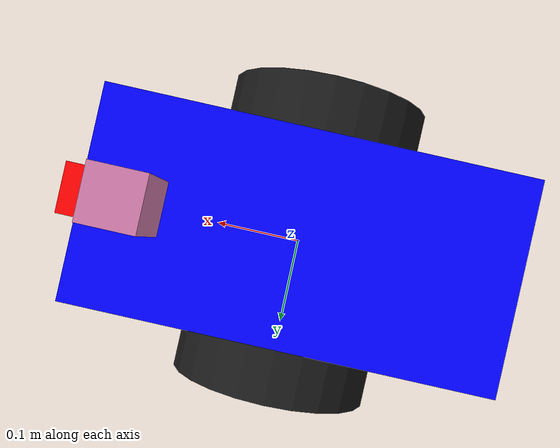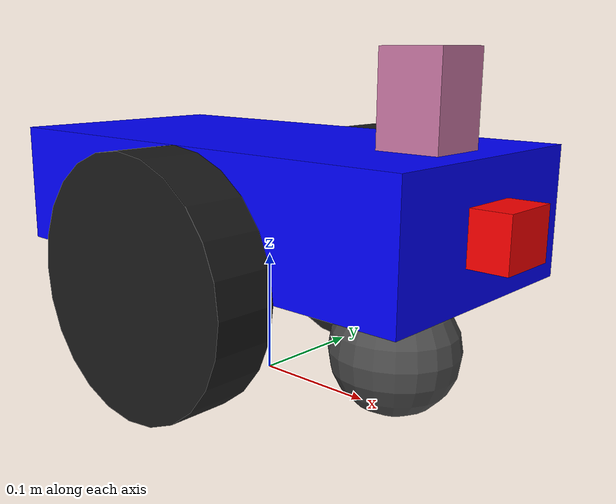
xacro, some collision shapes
<?xml version="1.0"?>
<robot name="robot" xmlns:xacro="http://www.ros.org/wiki/xacro">

  <!-- Shared dimensional properties (must come first) -->
  <xacro:include filename="$(find robot_description)/urdf/common/robot_properties.xacro"/>

  <!-- Robot base, chassis, and caster wheels -->
  <xacro:include filename="$(find robot_description)/urdf/base/base.xacro"/>

  <!-- Robot Controls -->
  <xacro:include filename="$(find robot_description)/urdf/base/base.ros2_control.xacro"/>

  <!-- Driven wheel macro -->
  <xacro:include filename="$(find robot_description)/urdf/wheels/wheel.xacro"/>

  <!-- Instantiate the two driven wheels (left = +Y, right = -Y) -->
  <xacro:wheel prefix="left" side="1"/>
  <xacro:wheel prefix="right" side="-1"/>

  <!-- Sensors -->
  <xacro:include filename="$(find robot_description)/urdf/sensors/lidar.xacro"/>
  <xacro:include filename="$(find robot_description)/urdf/sensors/camera.xacro"/>

  <!-- gz_ros2_control plugin for Gazebo simulation with ros2_control -->
  <gazebo>
    <plugin filename="gz_ros2_control-system" name="gz_ros2_control::GazeboSimROS2ControlPlugin">
      <parameters>$(find robot_description)/config/controllers.yaml</parameters>
    </plugin>
  </gazebo>

  <!-- Gazebo sensor rendering pipeline -->
  <gazebo>
    <plugin filename="gz-sim-sensors-system" name="gz::sim::systems::Sensors">
      <render_engine>ogre2</render_engine>
    </plugin>
  </gazebo>

</robot>

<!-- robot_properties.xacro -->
<robot xmlns:xacro="http://www.ros.org/wiki/xacro" name="robot_properties">

  <!-- Chassis dimensions (box: length x width x height) -->
  <xacro:property name="chassis_length" value="0.4"/>
  <xacro:property name="chassis_width" value="0.2"/>
  <xacro:property name="chassis_height" value="0.1"/>
  <xacro:property name="chassis_mass" value="15.0"/>

  <!-- Driven wheel dimensions (cylinder: radius and length, length = thickness) -->
  <xacro:property name="wheel_radius" value="0.1"/>
  <xacro:property name="wheel_length" value="0.05"/>
  <xacro:property name="wheel_mass" value="2.0"/>

  <!-- Caster wheel dimensions (sphere) -->
  <xacro:property name="caster_radius" value="0.05"/>
  <xacro:property name="caster_mass" value="0.5"/>
  <xacro:property name="caster_inset" value="0.02"/>

  <!-- Camera dimensions (box: x=depth, y=width, z=height) -->
  <xacro:property name="camera_size_x" value="0.03"/>
  <xacro:property name="camera_size_y" value="0.05"/>
  <xacro:property name="camera_size_z" value="0.04"/>
  <xacro:property name="camera_mass" value="0.1"/>

  <!-- Derived heights -->
  <!-- chassis frame sits at wheel-axle level, so wheels mount at chassis bottom -->
  <xacro:property name="chassis_z" value="${wheel_radius + chassis_height/2}"/>

  <!-- RViz Colors -->
  <material name="blue">
    <color rgba="0.0 0.0 1.0 1.0"/>
  </material>
  <material name="red">
    <color rgba="1.0 0.0 0.0 1.0"/>
  </material>
  <material name="black">
    <color rgba="0.1 0.1 0.1 1.0"/>
  </material>
  <material name="grey">
    <color rgba="0.3 0.3 0.3 1.0"/>
  </material>

</robot>

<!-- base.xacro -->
<robot xmlns:xacro="http://www.ros.org/wiki/xacro" name="base">

  <xacro:include filename="$(find robot_description)/urdf/wheels/caster.xacro"/>

  <!-- Robot footprint: navigation reference frame at ground level -->
  <link name="robot_footprint"/>

  <!-- Lift chassis frame to wheel-axle height + half chassis -->
  <joint name="robot_footprint_to_chassis_joint" type="fixed">
    <origin xyz="0 0 ${chassis_z}" rpy="0 0 0"/>
    <parent link="robot_footprint"/>
    <child link="chassis"/>
  </joint>

  <!-- Chassis link: frame at the geometric center of the box -->
  <link name="chassis">
    <inertial>
      <mass value="${chassis_mass}"/>
      <origin xyz="0 0 0" rpy="0 0 0"/>
      <inertia
          ixx="${chassis_mass * (chassis_width**2 + chassis_height**2) / 12}"
          ixy="0"
          ixz="0"
          iyy="${chassis_mass * (chassis_length**2 + chassis_height**2) / 12}"
          iyz="0"
          izz="${chassis_mass * (chassis_length**2 + chassis_width**2) / 12}"/>
    </inertial>

    <visual>
      <origin xyz="0 0 0" rpy="0 0 0"/>
      <geometry>
        <box size="${chassis_length} ${chassis_width} ${chassis_height}"/>
      </geometry>
      <material name="blue" />
    </visual>

    <collision>
      <origin xyz="0 0 0" rpy="0 0 0"/>
      <geometry>
        <box size="${chassis_length} ${chassis_width} ${chassis_height}"/>
      </geometry>
    </collision>
  </link>

  <!-- Front and back casters, placed inside the chassis footprint -->
  <xacro:caster prefix="front" x_offset="${chassis_length/2 - caster_radius - caster_inset}"/>
  <xacro:caster prefix="back" x_offset="${-(chassis_length/2 - caster_radius - caster_inset)}"/>

  <!-- Gazebo materials -->
  <gazebo reference="chassis">
    <material>Gazebo/Blue</material>
  </gazebo>

  <gazebo reference="front_caster">
    <material>Gazebo/DarkGrey</material>
  </gazebo>

  <gazebo reference="back_caster">
    <material>Gazebo/DarkGrey</material>
  </gazebo>

</robot>

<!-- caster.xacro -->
<robot xmlns:xacro="http://www.ros.org/wiki/xacro" name="caster">

  <!-- Caster macro: passive sphere that touches the ground -->
  <xacro:macro name="caster" params="prefix x_offset">
    <link name="${prefix}_caster">
      <inertial>
        <mass value="${caster_mass}"/>
        <origin xyz="0 0 0" rpy="0 0 0"/>
        <inertia
            ixx="${2.0/5.0 * caster_mass * caster_radius**2}"
            ixy="0"
            ixz="0"
            iyy="${2.0/5.0 * caster_mass * caster_radius**2}"
            iyz="0"
            izz="${2.0/5.0 * caster_mass * caster_radius**2}"/>
      </inertial>

      <visual>
        <origin xyz="0 0 0" rpy="0 0 0"/>
        <geometry>
          <sphere radius="${caster_radius}"/>
        </geometry>
        <material name="grey" />
      </visual>

      <collision>
        <origin xyz="0 0 0" rpy="0 0 0"/>
        <geometry>
          <sphere radius="${caster_radius - 0.0001}"/>
        </geometry>
      </collision>
    </link>

    <joint name="chassis_to_${prefix}_caster_joint" type="fixed">
      <origin xyz="${x_offset} 0 ${-(chassis_height/2 + (wheel_radius - caster_radius))}" rpy="0 0 0"/>
      <parent link="chassis"/>
      <child link="${prefix}_caster"/>
    </joint>
  </xacro:macro>

</robot>

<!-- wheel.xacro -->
<robot xmlns:xacro="http://www.ros.org/wiki/xacro" name="wheel">

  <xacro:macro name="wheel" params="prefix side">

    <!-- Wheel link: frame at the cylinder's geometric center -->
    <link name="${prefix}_wheel">
      <inertial>
        <mass value="${wheel_mass}"/>
        <origin xyz="0 0 0" rpy="0 0 0"/>
        <inertia
            ixx="${wheel_mass * wheel_radius**2 / 4 + wheel_mass * wheel_length**2 / 12}"
            ixy="0"
            ixz="0"
            iyy="${wheel_mass * wheel_radius**2 / 2}"
            iyz="0"
            izz="${wheel_mass * wheel_radius**2 / 4 + wheel_mass * wheel_length**2 / 12}"/>
      </inertial>

      <visual>
        <!-- rotate cylinder 90° about X so its axis is along Y -->
        <origin xyz="0 0 0" rpy="1.5708 0 0"/>
        <geometry>
          <cylinder radius="${wheel_radius}" length="${wheel_length}"/>
        </geometry>
        <material name="black" />
      </visual>

      <collision>
        <origin xyz="0 0 0" rpy="1.5708 0 0"/>
        <geometry>
          <cylinder radius="${wheel_radius}" length="${wheel_length}"/>
        </geometry>
      </collision>
    </link>

    <joint name="chassis_to_${prefix}_wheel_joint" type="continuous">
      <origin xyz="0 ${side * (chassis_width/2 + wheel_length/2)} ${-chassis_height/2}" rpy="0 0 0"/>
      <parent link="chassis"/>
      <child link="${prefix}_wheel"/>
      <axis xyz="0 1 0"/>
      <limit effort="10.0" velocity="10.0"/>   <!-- Nm and rad/s — used by ros2_control -->
      <dynamics damping="0.1" friction="0.1"/> <!-- optional; used by sim and fake hardware -->
    </joint>

  </xacro:macro>

  <!-- Gazebo wheel materials and friction -->
  <gazebo reference="left_wheel">
    <material>Gazebo/Green</material>
    <mu1>0.8</mu1>
    <mu2>0.8</mu2>
  </gazebo>

  <gazebo reference="right_wheel">
    <material>Gazebo/Green</material>
    <mu1>0.8</mu1>
    <mu2>0.8</mu2>
  </gazebo>

</robot>

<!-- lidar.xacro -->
<robot xmlns:xacro="http://www.ros.org/wiki/xacro" name="lidar">

  <link name="hokuyo_lidar">
    <inertial>
      <mass value="1e-5"/>
      <origin xyz="0 0 0" rpy="0 0 0"/>
      <inertia ixx="1e-6" ixy="0" ixz="0" iyy="1e-6" iyz="0" izz="1e-6"/>
    </inertial>

    <visual>
      <origin xyz="0 0 0" rpy="0 0 0"/>
      <geometry>
        <mesh filename="package://robot_description/meshes/sensors/hokuyo_lidar.dae"/>
      </geometry>
    </visual>

    <collision>
      <origin xyz="0 0 0" rpy="0 0 0"/>
      <geometry>
        <box size="0.05 0.05 0.07"/>
      </geometry>
    </collision>
  </link>

  <joint name="chassis_to_hokuyo_lidar_joint" type="fixed">
    <axis xyz="0 1 0"/>
    <origin xyz="0.15 0 ${chassis_height/2 + 0.035}" rpy="0 0 0"/>
    <parent link="chassis"/>
    <child link="hokuyo_lidar"/>
  </joint>

  <!-- Gazebo GPU lidar sensor -->
  <gazebo reference="hokuyo_lidar">
    <sensor name="gpu_lidar" type="gpu_lidar">
      <pose>0 0 0 0 0 0</pose>
      <gz_frame_id>hokuyo_lidar</gz_frame_id>
      <topic>/scan</topic>
      <update_rate>20</update_rate>
      <lidar>
        <scan>
          <horizontal>
            <samples>360</samples>
            <resolution>1.0</resolution>
            <min_angle>0.0</min_angle>
            <max_angle>6.28318530718</max_angle>
          </horizontal>
        </scan>
        <range>
          <min>0.1</min>
          <max>10.0</max>
          <resolution>0.01</resolution>
        </range>
        <noise>
          <type>gaussian</type>
          <mean>0.0</mean>
          <stddev>0.01</stddev>
        </noise>
      </lidar>
    </sensor>
  </gazebo>

</robot>

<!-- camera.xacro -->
<robot xmlns:xacro="http://www.ros.org/wiki/xacro" name="camera">

  <!-- Camera link: frame at the box's geometric center -->
  <link name="camera">
    <inertial>
      <mass value="${camera_mass}"/>
      <origin xyz="0 0 0" rpy="0 0 0"/>
      <inertia
          ixx="${camera_mass * (camera_size_y**2 + camera_size_z**2) / 12}"
          ixy="0"
          ixz="0"
          iyy="${camera_mass * (camera_size_x**2 + camera_size_z**2) / 12}"
          iyz="0"
          izz="${camera_mass * (camera_size_x**2 + camera_size_y**2) / 12}"/>
    </inertial>

    <visual>
      <origin xyz="0 0 0" rpy="0 0 0"/>
      <geometry>
        <box size="${camera_size_x} ${camera_size_y} ${camera_size_z}"/>
      </geometry>
      <material name="red" />
    </visual>

    <collision>
      <origin xyz="0 0 0" rpy="0 0 0"/>
      <geometry>
        <box size="${camera_size_x} ${camera_size_y} ${camera_size_z}"/>
      </geometry>
    </collision>
  </link>

  <!--
    Camera joint: mount flush against chassis front face.
      x-offset = chassis_length/2 + camera_size_x/2
      z-offset = 0 (vertically centered on chassis)
  -->
  <joint name="chassis_to_camera_joint" type="fixed">
    <origin xyz="${chassis_length/2 + camera_size_x/2} 0 0" rpy="0 0 0"/>
    <parent link="chassis"/>
    <child link="camera"/>
  </joint>

  <!-- Camera optical frame: ROS convention (Z forward, X right, Y down) -->
  <link name="camera_optical_frame"/>

  <joint name="camera_to_optical_joint" type="fixed">
    <origin xyz="0 0 0" rpy="-1.5708 0 -1.5708"/>
    <parent link="camera"/>
    <child link="camera_optical_frame"/>
  </joint>

  <!-- Gazebo RGB camera sensor -->
  <gazebo reference="camera">
    <sensor name="rgb_camera" type="camera">
      <pose>0 0 0 0 0 0</pose>
      <gz_frame_id>camera_optical_frame</gz_frame_id>
      <topic>/camera/rgb/image_raw</topic>
      <update_rate>30</update_rate>
      <camera>
        <image>
          <width>640</width>
          <height>480</height>
          <format>R8G8B8</format>
        </image>
        <clip>
          <near>0.01</near>
          <far>100.0</far>
        </clip>
      </camera>
    </sensor>

    <material>Gazebo/Red</material>
  </gazebo>

</robot>
